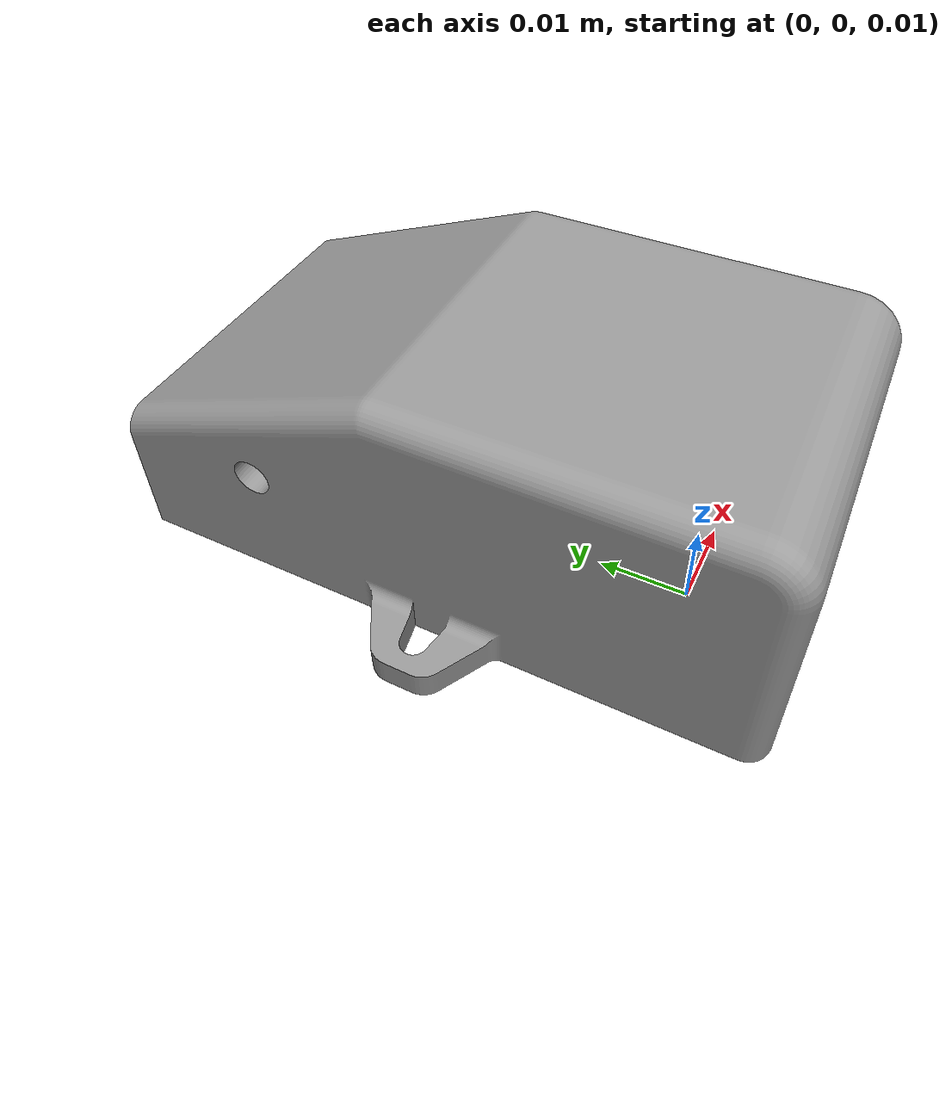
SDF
<?xml version="1.0" ?>
<sdf version="1.5">
  <model name="motor_box">
    <pose>0 0.013 0.0285 0 0 0</pose>
    <link name="link">
      <inertial>
        <mass>0.1</mass>
        <inertia>
          <ixx>0.0001</ixx>
          <ixy>0</ixy>
          <ixz>0</ixz>
          <iyy>0.0001</iyy>
          <iyz>0</iyz>
          <izz>0.0001</izz>
        </inertia>
      </inertial>
      <collision name="collision">
        <pose>0 0.0 0.013 1.57079632679 0 1.57079632679</pose>
        <geometry>
          <box>
            <size>0.06 0.001 0.04</size>
          </box>
        </geometry>
      </collision>
      <visual name="visual">
        <pose>0 0 0.0 1.57079632679 0 1.57079632679</pose>
        <geometry>
          <mesh>
            <uri>model://motor_box/meshes/motor_box.dae</uri>
            <scale>0.001 0.001 0.001</scale>
          </mesh>
        </geometry>
        <material>
          <script>
            <uri>file://media/materials/scripts/gazebo.material</uri>
            <name>Gazebo/Grey</name>
          </script>
        </material>
      </visual>
    </link>
  </model>

</sdf>
